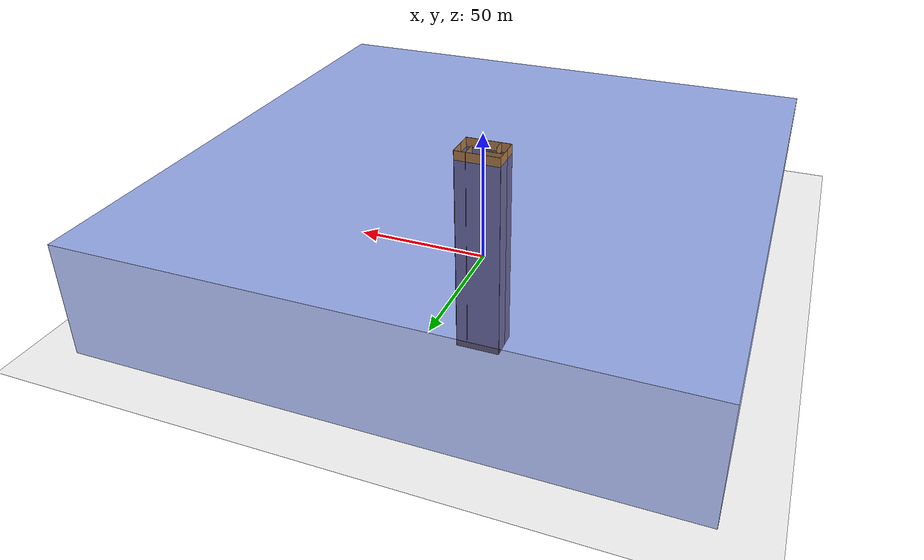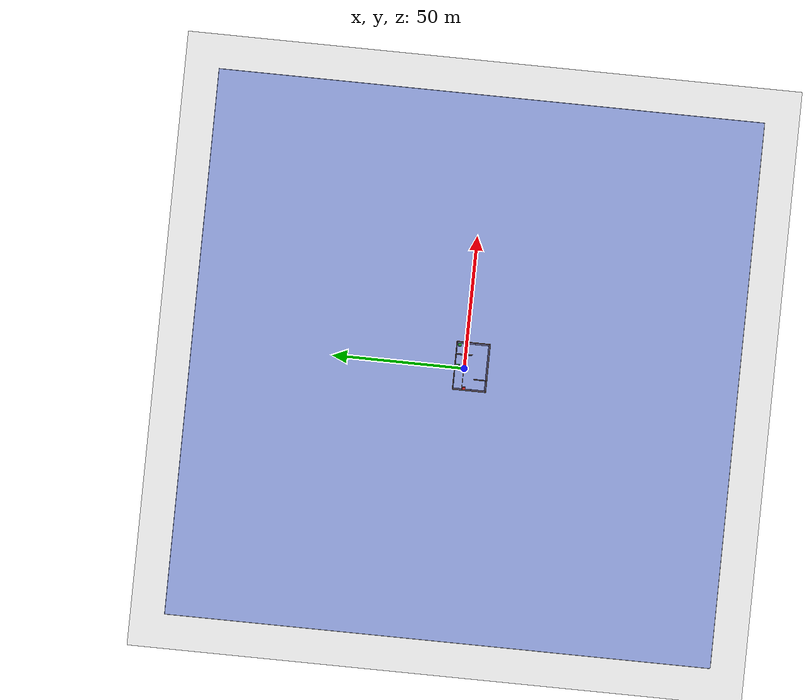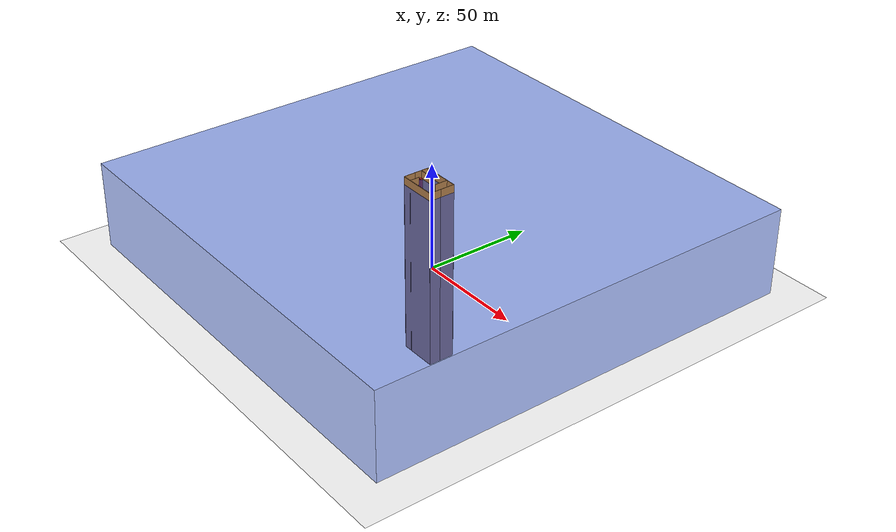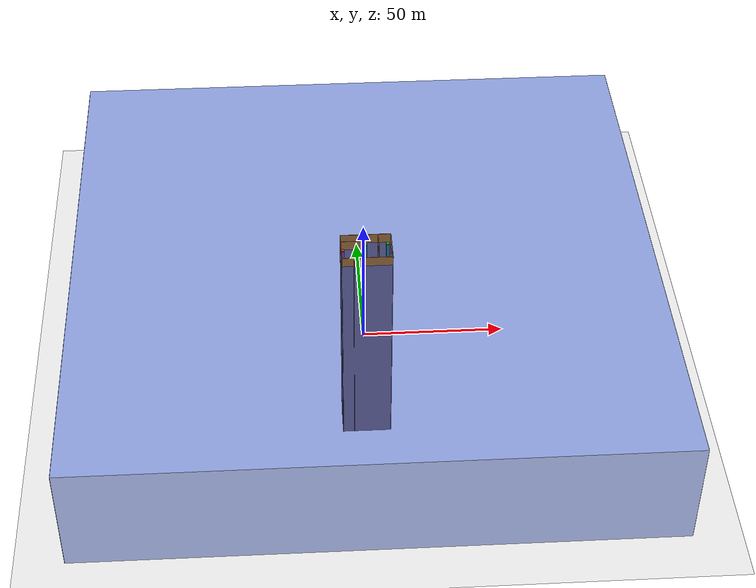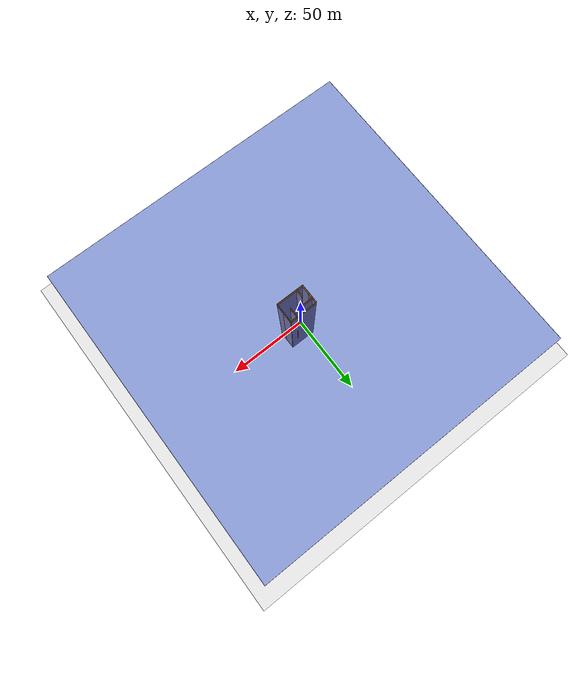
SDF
<sdf version="1.6">
 <world name="default">
  <light name="sun" type="directional">
   <pose>0 0 10 0 -0 0</pose>
   <diffuse>0.8 0.8 0.8 1</diffuse>
   <specular>0.1 0.1 0.1 1</specular>
   <attenuation>
    <range>1000</range>
    <constant>0.9</constant>
    <linear>0.01</linear>
    <quadratic>0.001</quadratic>
   </attenuation>
   <direction>-0.5 0.5 -1</direction>
  </light>
  <model name="ground_plane">
   <static>1</static>
   <link name="link">
    <collision name="collision">
     <geometry><plane><normal>0 0 1</normal><size>200 200</size></plane></geometry>
     <surface>
      <contact><collide_bitmask>65535</collide_bitmask></contact>
      <friction><ode><mu>100</mu><mu2>50</mu2></ode></friction>
     </surface>
    </collision>
    <visual name="visual">
     <cast_shadows>0</cast_shadows>
     <geometry><plane><normal>0 0 1</normal><size>200 200</size></plane></geometry>
     <material>
      <script><uri>file://media/materials/scripts/gazebo.material</uri><name>Gazebo/Grey</name></script>
     </material>
    </visual>
   </link>
  </model>
  <model name="ceiling_plane">
   <static>1</static>
   <pose>0 0 40 0 -0 0</pose>
   <link name="link">
    <collision name="collision"><geometry><box><size>200 200 0.1</size></box></geometry></collision>
    <visual name="visual">
     <cast_shadows>0</cast_shadows>
     <geometry><box><size>200 200 0.1</size></box></geometry>
     <material>
      <script><uri>file://media/materials/scripts/gazebo.material</uri><name>Gazebo/BlueTransparent</name></script>
     </material>
    </visual>
    <visual name="visual_sideA">
     <pose>100.05 0 -20 0 -0 0</pose>
     <cast_shadows>0</cast_shadows>
     <geometry><box><size>0.1 200 39.9</size></box></geometry>
     <material>
      <script><uri>file://media/materials/scripts/gazebo.material</uri><name>Gazebo/BlueTransparent</name></script>
     </material>
    </visual>
    <visual name="visual_sideB">
     <pose>-100.05 0 -20 0 -0 0</pose>
     <cast_shadows>0</cast_shadows>
     <geometry><box><size>0.1 200 39.9</size></box></geometry>
     <material>
      <script><uri>file://media/materials/scripts/gazebo.material</uri><name>Gazebo/BlueTransparent</name></script>
     </material>
    </visual>
    <visual name="visual_sideC">
     <pose>0 100.05 -20 0 -0 0</pose>
     <cast_shadows>0</cast_shadows>
     <geometry><box><size>200 0.1 39.9</size></box></geometry>
     <material>
      <script><uri>file://media/materials/scripts/gazebo.material</uri><name>Gazebo/BlueTransparent</name></script>
     </material>
    </visual>
    <visual name="visual_sideD">
     <pose>0 -100.05 -20 0 -0 0</pose>
     <cast_shadows>0</cast_shadows>
     <geometry><box><size>200 0.1 39.9</size></box></geometry>
     <material>
      <script><uri>file://media/materials/scripts/gazebo.material</uri><name>Gazebo/BlueTransparent</name></script>
     </material>
    </visual>
   </link>
  </model>
  <model name="ground_plane">
   <static>1</static>
   <link name="link">
    <collision name="collision">
     <geometry><plane><normal>0 0 1</normal><size>200 200</size></plane></geometry>
     <surface>
      <contact><collide_bitmask>65535</collide_bitmask></contact>
      <friction><ode><mu>100</mu><mu2>50</mu2></ode></friction>
     </surface>
    </collision>
    <visual name="visual">
     <cast_shadows>0</cast_shadows>
     <geometry><plane><normal>0 0 1</normal><size>200 200</size></plane></geometry>
     <material>
      <script><uri>file://media/materials/scripts/gazebo.material</uri><name>Gazebo/Grey</name></script>
     </material>
    </visual>
   </link>
  </model>
  <gravity>0 0 -9.8</gravity>
  <magnetic_field>6e-06 2.3e-05 -4.2e-05</magnetic_field>
  <atmosphere type="adiabatic"/>
  <physics name="default_physics" default="0" type="ode">
   <max_step_size>0.001</max_step_size>
   <real_time_factor>1</real_time_factor>
   <real_time_update_rate>1000</real_time_update_rate>
  </physics>
  <scene><ambient>0.4 0.4 0.4 1</ambient><background>0.7 0.7 0.7 1</background><shadows>1</shadows></scene>
  <spherical_coordinates>
   <surface_model>EARTH_WGS84</surface_model>
   <latitude_deg>0</latitude_deg>
   <longitude_deg>0</longitude_deg>
   <elevation>0</elevation>
   <heading_deg>0</heading_deg>
  </spherical_coordinates>
  <model name="mypool">
   <pose>0.875186 -2.38595 0 0 -0 0</pose>
   <link name="Wall_0">
    <collision name="Wall_0_Collision">
     <geometry><box><size>5.5 0.15 85</size></box></geometry>
     <pose>0 0 1.25 0 -0 0</pose>
    </collision>
    <visual name="Wall_0_Visual">
     <pose>0 0 1.25 0 -0 0</pose>
     <geometry><box><size>5.5 0.15 85</size></box></geometry>
     <material>
      <script><uri>file://media/materials/scripts/gazebo.material</uri><name>Gazebo/Wood</name></script>
      <ambient>1 1 1 1</ambient>
     </material>
    </visual>
    <pose>-8.8 -3.41907 0 0 0 -1.5708</pose>
   </link>
   <link name="Wall_1">
    <collision name="Wall_1_Collision">
     <geometry><box><size>17.75 0.15 85</size></box></geometry>
     <pose>0 0 1.25 0 -0 0</pose>
    </collision>
    <visual name="Wall_1_Visual">
     <pose>0 0 1.25 0 -0 0</pose>
     <geometry><box><size>17.75 0.15 85</size></box></geometry>
     <material>
      <script><uri>file://media/materials/scripts/gazebo.material</uri><name>Gazebo/Wood</name></script>
      <ambient>1 1 1 1</ambient>
     </material>
    </visual>
    <pose>0 -6.09407 0 0 -0 0</pose>
   </link>
   <link name="Wall_11">
    <collision name="Wall_11_Collision">
     <geometry><box><size>6.25 0.15 85</size></box></geometry>
     <pose>0 0 1.25 0 -0 0</pose>
    </collision>
    <visual name="Wall_11_Visual">
     <pose>0 0 1.25 0 -0 0</pose>
     <geometry><box><size>6.25 0.15 85</size></box></geometry>
     <material>
      <script><uri>file://media/materials/scripts/gazebo.material</uri><name>Gazebo/Wood</name></script>
      <ambient>1 1 1 1</ambient>
     </material>
    </visual>
    <pose>4.30307 3.0679 0 0 0 -1.5708</pose>
   </link>
   <link name="Wall_13">
    <collision name="Wall_13_Collision">
     <geometry><box><size>7.5 0.15 85</size></box></geometry>
     <pose>0 0 1.25 0 -0 0</pose>
    </collision>
    <visual name="Wall_13_Visual">
     <pose>0 0 1.25 0 -0 0</pose>
     <geometry><box><size>7.5 0.15 85</size></box></geometry>
     <material>
      <script><uri>file://media/materials/scripts/gazebo.material</uri><name>Gazebo/Wood</name></script>
      <ambient>1 1 1 1</ambient>
     </material>
    </visual>
    <pose>-5.09515 2.72165 0 0 -0 0</pose>
   </link>
   <link name="Wall_2">
    <collision name="Wall_2_Collision">
     <geometry><box><size>5.5 0.15 85</size></box></geometry>
     <pose>0 0 1.25 0 -0 0</pose>
    </collision>
    <visual name="Wall_2_Visual">
     <pose>0 0 1.25 0 -0 0</pose>
     <geometry><box><size>5.5 0.15 85</size></box></geometry>
     <material>
      <script><uri>file://media/materials/scripts/gazebo.material</uri><name>Gazebo/Wood</name></script>
      <ambient>1 1 1 1</ambient>
     </material>
    </visual>
    <pose>8.8 -3.41907 0 0 -0 1.5708</pose>
   </link>
   <link name="Wall_3">
    <collision name="Wall_3_Collision">
     <geometry><box><size>7 0.15 85</size></box></geometry>
     <pose>0 0 1.25 0 -0 0</pose>
    </collision>
    <visual name="Wall_3_Visual">
     <pose>0 0 1.25 0 -0 0</pose>
     <geometry><box><size>7 0.15 85</size></box></geometry>
     <material>
      <script><uri>file://media/materials/scripts/gazebo.material</uri><name>Gazebo/Wood</name></script>
      <ambient>1 1 1 1</ambient>
     </material>
    </visual>
    <pose>8.8 2.68093 0 0 -0 1.5708</pose>
   </link>
   <link name="Wall_6">
    <collision name="Wall_6_Collision">
     <geometry><box><size>17.75 0.15 85</size></box></geometry>
     <pose>0 0 1.25 0 -0 0</pose>
    </collision>
    <visual name="Wall_6_Visual">
     <pose>0 0 1.25 0 -0 0</pose>
     <geometry><box><size>17.75 0.15 85</size></box></geometry>
     <material>
      <script><uri>file://media/materials/scripts/gazebo.material</uri><name>Gazebo/Wood</name></script>
      <ambient>1 1 1 1</ambient>
     </material>
    </visual>
    <pose>0 6.10593 0 0 -0 3.14159</pose>
   </link>
   <link name="Wall_7">
    <collision name="Wall_7_Collision">
     <geometry><box><size>7 0.15 85</size></box></geometry>
     <pose>0 0 1.25 0 -0 0</pose>
    </collision>
    <visual name="Wall_7_Visual">
     <pose>0 0 1.25 0 -0 0</pose>
     <geometry><box><size>7 0.15 85</size></box></geometry>
     <material>
      <script><uri>file://media/materials/scripts/gazebo.material</uri><name>Gazebo/Wood</name></script>
      <ambient>1 1 1 1</ambient>
     </material>
    </visual>
    <pose>-8.8 2.68093 0 0 0 -1.5708</pose>
   </link>
   <link name="Wall_9">
    <collision name="Wall_9_Collision">
     <geometry><box><size>4.75 0.15 85</size></box></geometry>
     <pose>0 0 1.25 0 -0 0</pose>
    </collision>
    <visual name="Wall_9_Visual">
     <pose>0 0 1.25 0 -0 0</pose>
     <geometry><box><size>4.75 0.15 85</size></box></geometry>
     <material>
      <script><uri>file://media/materials/scripts/gazebo.material</uri><name>Gazebo/Wood</name></script>
      <ambient>1 1 1 1</ambient>
     </material>
    </visual>
    <pose>-4.67605 -3.81789 0 0 -0 1.5708</pose>
   </link>
   <static>1</static>
  </model>
  <model name="unit_box_1">
   <pose>0.884759 2.54789 20.25 1.2e-05 -2.1e-05 0</pose>
   <link name="link">
    <inertial>
     <mass>1</mass>
     <inertia><ixx>400000</ixx><ixy>0</ixy><ixz>0</ixz><iyy>400000</iyy><iyz>0</iyz><izz>400000</izz></inertia>
    </inertial>
    <collision name="collision"><geometry><box><size>1 1 40.5</size></box></geometry></collision>
    <visual name="visual">
     <geometry><box><size>1 1 40.5</size></box></geometry>
     <material>
      <script><name>Gazebo/Green</name><uri>file://media/materials/scripts/gazebo.material</uri></script>
     </material>
    </visual>
   </link>
  </model>
  <model name="unit_box_2">
   <pose>-7.25987 -0.4207 20.25 1.2e-05 -2.1e-05 0</pose>
   <link name="link">
    <inertial>
     <mass>1</mass>
     <inertia><ixx>400000</ixx><ixy>0</ixy><ixz>0</ixz><iyy>400000</iyy><iyz>0</iyz><izz>400000</izz></inertia>
    </inertial>
    <collision name="collision"><geometry><box><size>1 1 40.5</size></box></geometry></collision>
    <visual name="visual">
     <geometry><box><size>1 1 40.5</size></box></geometry>
     <material>
      <script><name>Gazebo/Red</name><uri>file://media/materials/scripts/gazebo.material</uri></script>
     </material>
    </visual>
   </link>
  </model>
  <model name="unit_box_3">
   <pose>8.56759 2.54789 20.25 1.2e-05 -2.1e-05 0</pose>
   <link name="link">
    <inertial>
     <mass>1</mass>
     <inertia><ixx>400000</ixx><ixy>0</ixy><ixz>0</ixz><iyy>400000</iyy><iyz>0</iyz><izz>400000</izz></inertia>
    </inertial>
    <collision name="collision"><geometry><box><size>1 1 40.5</size></box></geometry></collision>
    <visual name="visual">
     <geometry><box><size>1 1 40.5</size></box></geometry>
     <material>
      <script><name>Gazebo/Green</name><uri>file://media/materials/scripts/gazebo.material</uri></script>
     </material>
    </visual>
   </link>
  </model>
 </world>
</sdf>
